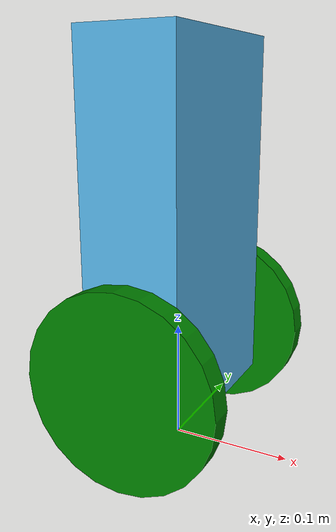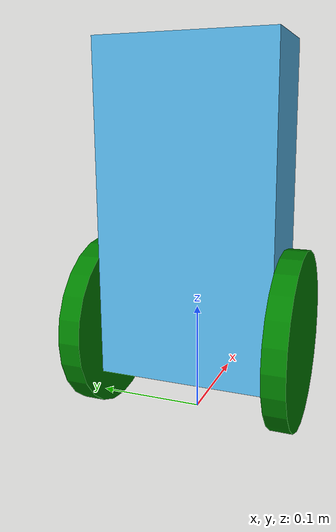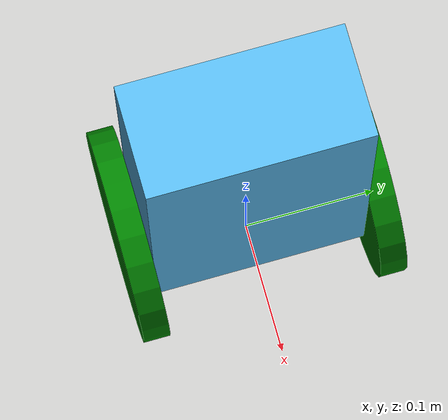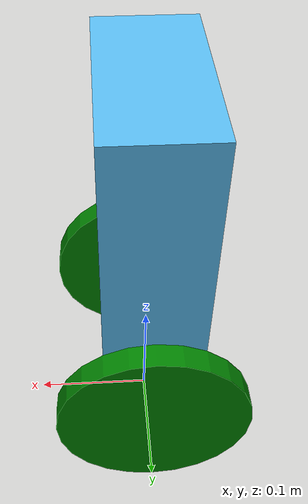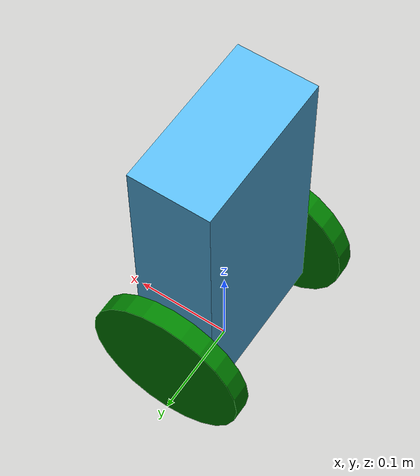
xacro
<?xml version="1.0"?>

<robot xmlns:xacro="http://www.ros.org/wiki/xacro" name='self_balance'>

                <!-- Variables  -->
    <xacro:property name='base_length' value='0.08'/>
    <xacro:property name='base_width' value='0.16'/>
    <xacro:property name='base_height' value='0.30'/>

    <xacro:property name='wheel_radius' value='${base_length}'/>
    <xacro:property name='wheel_length' value='${base_width / 8.0}'/>

    <material name='green'>
        <color rgba="0.0 0.5 0.0 1.0"/>
    </material>

    <link name="base_foot"></link>
    <link name="base_link">
        <visual>
            <geometry>
                <box size="${base_length} ${base_width} ${base_height}"/>
            </geometry>
            <origin xyz="0.0 0.0 ${base_height / 2.0}" rpy="0.0 0.0 0.0"/>
        </visual>
    </link>
    <joint name="base_foot" type="fixed">
        <origin xyz="0.0 0.0 ${base_length / 2.0}" rpy="0.0 0.0 0.0"/>
        <parent link="base_foot"/>
        <child link="base_link"/>
    </joint>

    <link name="right_wheel">
        <visual>
            <geometry>
                <cylinder radius="${wheel_radius}" length="${wheel_length}"/>
            </geometry>
            <origin xyz="0.0 0.0 0.0" rpy="0.0 0.0 0.0"/>
            <material name="green"/>
        </visual>
    </link>

    <joint name="base_right_joint" type="continuous">
        <origin xyz="0.0 ${-base_width /2.0 + -wheel_length/2.0 } ${wheel_radius/2.0}" rpy="1.57 0.0 0.0"/>
        <parent link="base_link"/>
        <child link="right_wheel"/>
        <axis xyz="0.0 0.0 1"/>
    </joint>

    <link name="left_wheel">
        <visual>
            <geometry>
                <cylinder radius="${wheel_radius}" length="${wheel_length}"/>
            </geometry>
            <origin xyz="0.0 0.0 0.0" rpy="0.0 0.0 0.0"/>
            <material name="green"/>
        </visual>
    </link>

    <joint name="base_left_joint" type="continuous">
        <origin xyz="0.0 ${base_width / 2.0 + wheel_length / 2.0} ${wheel_radius/2.0}" rpy="1.57 0.0 0.0"/>
        <parent link="base_link"/>
        <child link="left_wheel"/>
        <axis xyz="0.0 0.0 1"/>
    </joint>

</robot>
